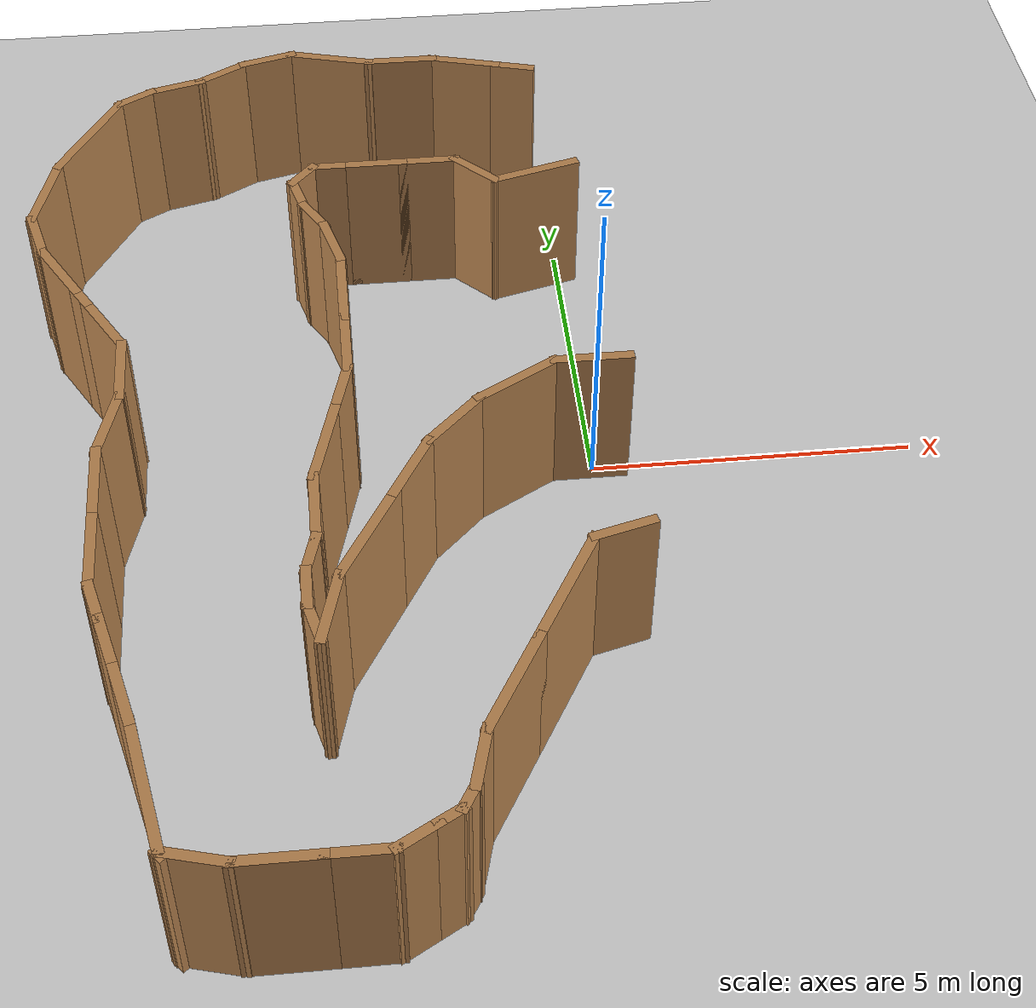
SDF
<sdf version="1.7">
 <world name="default">
  <model name="ground_plane">
   <static>1</static>
   <link name="link">
    <collision name="collision">
     <geometry><plane><normal>0 0 1</normal><size>100 100</size></plane></geometry>
     <surface><friction><ode><mu>100</mu><mu2>50</mu2></ode></friction></surface>
    </collision>
    <visual name="visual">
     <cast_shadows>0</cast_shadows>
     <geometry><plane><normal>0 0 1</normal><size>100 100</size></plane></geometry>
     <material>
      <script><uri>file://media/materials/scripts/gazebo.material</uri><name>Gazebo/Grey</name></script>
     </material>
    </visual>
   </link>
  </model>
  <model name="m-shape-circle">
   <pose>0.902463 -0.279625 0 0 -0 0</pose>
   <link name="Wall_10">
    <collision name="Wall_10_Collision">
     <geometry><box><size>0.75 0.15 2.5</size></box></geometry>
     <pose>0 0 1.25 0 -0 0</pose>
    </collision>
    <visual name="Wall_10_Visual">
     <pose>0 0 1.25 0 -0 0</pose>
     <geometry><box><size>0.75 0.15 2.5</size></box></geometry>
     <material>
      <script><uri>file://media/materials/scripts/gazebo.material</uri><name>Gazebo/Wood</name></script>
      <ambient>1 1 1 1</ambient>
     </material>
     <meta><layer>0</layer></meta>
    </visual>
    <pose>-8.04587 -3.77192 0 0 -0 1.8326</pose>
   </link>
   <link name="Wall_11">
    <collision name="Wall_11_Collision">
     <geometry><box><size>1.5 0.15 2.5</size></box></geometry>
     <pose>0 0 1.25 0 -0 0</pose>
    </collision>
    <visual name="Wall_11_Visual">
     <pose>0 0 1.25 0 -0 0</pose>
     <geometry><box><size>1.5 0.15 2.5</size></box></geometry>
     <material>
      <script><uri>file://media/materials/scripts/gazebo.material</uri><name>Gazebo/Wood</name></script>
      <ambient>1 1 1 1</ambient>
     </material>
     <meta><layer>0</layer></meta>
    </visual>
    <pose>-8.12351 -2.80714 0 0 -0 1.5708</pose>
   </link>
   <link name="Wall_117">
    <collision name="Wall_117_Collision">
     <geometry><box><size>1.25 0.15 2.5</size></box></geometry>
     <pose>0 0 1.25 0 -0 0</pose>
    </collision>
    <visual name="Wall_117_Visual">
     <pose>0 0 1.25 0 -0 0</pose>
     <geometry><box><size>1.25 0.15 2.5</size></box></geometry>
     <material>
      <script><uri>file://media/materials/scripts/gazebo.material</uri><name>Gazebo/Wood</name></script>
      <ambient>1 1 1 1</ambient>
     </material>
     <meta><layer>0</layer></meta>
    </visual>
    <pose>-0.996021 0.174352 0 0 -0 3.14159</pose>
   </link>
   <link name="Wall_118">
    <collision name="Wall_118_Collision">
     <geometry><box><size>1.5 0.15 2.5</size></box></geometry>
     <pose>0 0 1.25 0 -0 0</pose>
    </collision>
    <visual name="Wall_118_Visual">
     <pose>0 0 1.25 0 -0 0</pose>
     <geometry><box><size>1.5 0.15 2.5</size></box></geometry>
     <material>
      <script><uri>file://media/materials/scripts/gazebo.material</uri><name>Gazebo/Wood</name></script>
      <ambient>1 1 1 1</ambient>
     </material>
     <meta><layer>0</layer></meta>
    </visual>
    <pose>-2.13059 -0.163148 0 0 -0 -2.61799</pose>
   </link>
   <link name="Wall_119">
    <collision name="Wall_119_Collision">
     <geometry><box><size>1.25 0.15 2.5</size></box></geometry>
     <pose>0 0 1.25 0 -0 0</pose>
    </collision>
    <visual name="Wall_119_Visual">
     <pose>0 0 1.25 0 -0 0</pose>
     <geometry><box><size>1.25 0.15 2.5</size></box></geometry>
     <material>
      <script><uri>file://media/materials/scripts/gazebo.material</uri><name>Gazebo/Wood</name></script>
      <ambient>1 1 1 1</ambient>
     </material>
     <meta><layer>0</layer></meta>
    </visual>
    <pose>-3.10406 -0.889557 0 0 -0 -2.35619</pose>
   </link>
   <link name="Wall_12">
    <collision name="Wall_12_Collision">
     <geometry><box><size>1.25 0.15 2.5</size></box></geometry>
     <pose>0 0 1.25 0 -0 0</pose>
    </collision>
    <visual name="Wall_12_Visual">
     <pose>0 0 1.25 0 -0 0</pose>
     <geometry><box><size>1.25 0.15 2.5</size></box></geometry>
     <material>
      <script><uri>file://media/materials/scripts/gazebo.material</uri><name>Gazebo/Wood</name></script>
      <ambient>1 1 1 1</ambient>
     </material>
     <meta><layer>0</layer></meta>
    </visual>
    <pose>-8.12351 -1.58214 0 0 -0 1.5708</pose>
   </link>
   <link name="Wall_120">
    <collision name="Wall_120_Collision">
     <geometry><box><size>1.25 0.15 2.5</size></box></geometry>
     <pose>0 0 1.25 0 -0 0</pose>
    </collision>
    <visual name="Wall_120_Visual">
     <pose>0 0 1.25 0 -0 0</pose>
     <geometry><box><size>1.25 0.15 2.5</size></box></geometry>
     <material>
      <script><uri>file://media/materials/scripts/gazebo.material</uri><name>Gazebo/Wood</name></script>
      <ambient>1 1 1 1</ambient>
     </material>
     <meta><layer>0</layer></meta>
    </visual>
    <pose>-3.76797 -1.75478 0 0 -0 -2.0944</pose>
   </link>
   <link name="Wall_121">
    <collision name="Wall_121_Collision">
     <geometry><box><size>1.75 0.15 2.5</size></box></geometry>
     <pose>0 0 1.25 0 -0 0</pose>
    </collision>
    <visual name="Wall_121_Visual">
     <pose>0 0 1.25 0 -0 0</pose>
     <geometry><box><size>1.75 0.15 2.5</size></box></geometry>
     <material>
      <script><uri>file://media/materials/scripts/gazebo.material</uri><name>Gazebo/Wood</name></script>
      <ambient>1 1 1 1</ambient>
     </material>
     <meta><layer>0</layer></meta>
    </visual>
    <pose>-4.44297 -2.92391 0 0 -0 -2.0944</pose>
   </link>
   <link name="Wall_122">
    <collision name="Wall_122_Collision">
     <geometry><box><size>1.25 0.15 2.5</size></box></geometry>
     <pose>0 0 1.25 0 -0 0</pose>
    </collision>
    <visual name="Wall_122_Visual">
     <pose>0 0 1.25 0 -0 0</pose>
     <geometry><box><size>1.25 0.15 2.5</size></box></geometry>
     <material>
      <script><uri>file://media/materials/scripts/gazebo.material</uri><name>Gazebo/Wood</name></script>
      <ambient>1 1 1 1</ambient>
     </material>
     <meta><layer>0</layer></meta>
    </visual>
    <pose>-4.98532 -4.14799 0 0 -0 -1.8326</pose>
   </link>
   <link name="Wall_123">
    <collision name="Wall_123_Collision">
     <geometry><box><size>0.75 0.15 2.5</size></box></geometry>
     <pose>0 0 1.25 0 -0 0</pose>
    </collision>
    <visual name="Wall_123_Visual">
     <pose>0 0 1.25 0 -0 0</pose>
     <geometry><box><size>0.75 0.15 2.5</size></box></geometry>
     <material>
      <script><uri>file://media/materials/scripts/gazebo.material</uri><name>Gazebo/Wood</name></script>
      <ambient>1 1 1 1</ambient>
     </material>
     <meta><layer>0</layer></meta>
    </visual>
    <pose>-5.20532 -4.38948 0 0 -0 1.8326</pose>
   </link>
   <link name="Wall_124">
    <collision name="Wall_124_Collision">
     <geometry><box><size>0.75 0.15 2.5</size></box></geometry>
     <pose>0 0 1.25 0 -0 0</pose>
    </collision>
    <visual name="Wall_124_Visual">
     <pose>0 0 1.25 0 -0 0</pose>
     <geometry><box><size>0.75 0.15 2.5</size></box></geometry>
     <material>
      <script><uri>file://media/materials/scripts/gazebo.material</uri><name>Gazebo/Wood</name></script>
      <ambient>1 1 1 1</ambient>
     </material>
     <meta><layer>0</layer></meta>
    </visual>
    <pose>-5.28296 -3.7997 0 0 -0 1.5708</pose>
   </link>
   <link name="Wall_125">
    <collision name="Wall_125_Collision">
     <geometry><box><size>0.75 0.15 2.5</size></box></geometry>
     <pose>0 0 1.25 0 -0 0</pose>
    </collision>
    <visual name="Wall_125_Visual">
     <pose>0 0 1.25 0 -0 0</pose>
     <geometry><box><size>0.75 0.15 2.5</size></box></geometry>
     <material>
      <script><uri>file://media/materials/scripts/gazebo.material</uri><name>Gazebo/Wood</name></script>
      <ambient>1 1 1 1</ambient>
     </material>
     <meta><layer>0</layer></meta>
    </visual>
    <pose>-5.20532 -3.20992 0 0 -0 1.309</pose>
   </link>
   <link name="Wall_126">
    <collision name="Wall_126_Collision">
     <geometry><box><size>1.25 0.15 2.5</size></box></geometry>
     <pose>0 0 1.25 0 -0 0</pose>
    </collision>
    <visual name="Wall_126_Visual">
     <pose>0 0 1.25 0 -0 0</pose>
     <geometry><box><size>1.25 0.15 2.5</size></box></geometry>
     <material>
      <script><uri>file://media/materials/scripts/gazebo.material</uri><name>Gazebo/Wood</name></script>
      <ambient>1 1 1 1</ambient>
     </material>
     <meta><layer>0</layer></meta>
    </visual>
    <pose>-5.12767 -2.37014 0 0 -0 1.5708</pose>
   </link>
   <link name="Wall_127">
    <collision name="Wall_127_Collision">
     <geometry><box><size>1.5 0.15 2.5</size></box></geometry>
     <pose>0 0 1.25 0 -0 0</pose>
    </collision>
    <visual name="Wall_127_Visual">
     <pose>0 0 1.25 0 -0 0</pose>
     <geometry><box><size>1.5 0.15 2.5</size></box></geometry>
     <material>
      <script><uri>file://media/materials/scripts/gazebo.material</uri><name>Gazebo/Wood</name></script>
      <ambient>1 1 1 1</ambient>
     </material>
     <meta><layer>0</layer></meta>
    </visual>
    <pose>-4.95297 -1.16814 0 0 -0 1.309</pose>
   </link>
   <link name="Wall_128">
    <collision name="Wall_128_Collision">
     <geometry><box><size>1 0.15 2.5</size></box></geometry>
     <pose>0 0 1.25 0 -0 0</pose>
    </collision>
    <visual name="Wall_128_Visual">
     <pose>0 0 1.25 0 -0 0</pose>
     <geometry><box><size>1 0.15 2.5</size></box></geometry>
     <material>
      <script><uri>file://media/materials/scripts/gazebo.material</uri><name>Gazebo/Wood</name></script>
      <ambient>1 1 1 1</ambient>
     </material>
     <meta><layer>0</layer></meta>
    </visual>
    <pose>-4.66827 -0.105623 0 0 -0 1.309</pose>
   </link>
   <link name="Wall_129">
    <collision name="Wall_129_Collision">
     <geometry><box><size>1.25 0.15 2.5</size></box></geometry>
     <pose>0 0 1.25 0 -0 0</pose>
    </collision>
    <visual name="Wall_129_Visual">
     <pose>0 0 1.25 0 -0 0</pose>
     <geometry><box><size>1.25 0.15 2.5</size></box></geometry>
     <material>
      <script><uri>file://media/materials/scripts/gazebo.material</uri><name>Gazebo/Wood</name></script>
      <ambient>1 1 1 1</ambient>
     </material>
     <meta><layer>0</layer></meta>
    </visual>
    <pose>-4.55827 0.854895 0 0 -0 1.5708</pose>
   </link>
   <link name="Wall_13">
    <collision name="Wall_13_Collision">
     <geometry><box><size>1.25 0.15 2.5</size></box></geometry>
     <pose>0 0 1.25 0 -0 0</pose>
    </collision>
    <visual name="Wall_13_Visual">
     <pose>0 0 1.25 0 -0 0</pose>
     <geometry><box><size>1.25 0.15 2.5</size></box></geometry>
     <material>
      <script><uri>file://media/materials/scripts/gazebo.material</uri><name>Gazebo/Wood</name></script>
      <ambient>1 1 1 1</ambient>
     </material>
     <meta><layer>0</layer></meta>
    </visual>
    <pose>-7.98116 -0.500884 0 0 -0 1.309</pose>
   </link>
   <link name="Wall_130">
    <collision name="Wall_130_Collision">
     <geometry><box><size>1.5 0.15 2.5</size></box></geometry>
     <pose>0 0 1.25 0 -0 0</pose>
    </collision>
    <visual name="Wall_130_Visual">
     <pose>0 0 1.25 0 -0 0</pose>
     <geometry><box><size>1.5 0.15 2.5</size></box></geometry>
     <material>
      <script><uri>file://media/materials/scripts/gazebo.material</uri><name>Gazebo/Wood</name></script>
      <ambient>1 1 1 1</ambient>
     </material>
     <meta><layer>0</layer></meta>
    </visual>
    <pose>-4.55827 2.0799 0 0 -0 1.5708</pose>
   </link>
   <link name="Wall_131">
    <collision name="Wall_131_Collision">
     <geometry><box><size>1 0.15 2.5</size></box></geometry>
     <pose>0 0 1.25 0 -0 0</pose>
    </collision>
    <visual name="Wall_131_Visual">
     <pose>0 0 1.25 0 -0 0</pose>
     <geometry><box><size>1 0.15 2.5</size></box></geometry>
     <material>
      <script><uri>file://media/materials/scripts/gazebo.material</uri><name>Gazebo/Wood</name></script>
      <ambient>1 1 1 1</ambient>
     </material>
     <meta><layer>0</layer></meta>
    </visual>
    <pose>-4.66827 3.16541 0 0 -0 1.8326</pose>
   </link>
   <link name="Wall_132">
    <collision name="Wall_132_Collision">
     <geometry><box><size>0.75 0.15 2.5</size></box></geometry>
     <pose>0 0 1.25 0 -0 0</pose>
    </collision>
    <visual name="Wall_132_Visual">
     <pose>0 0 1.25 0 -0 0</pose>
     <geometry><box><size>0.75 0.15 2.5</size></box></geometry>
     <material>
      <script><uri>file://media/materials/scripts/gazebo.material</uri><name>Gazebo/Wood</name></script>
      <ambient>1 1 1 1</ambient>
     </material>
     <meta><layer>0</layer></meta>
    </visual>
    <pose>-4.92827 3.83574 0 0 -0 2.0944</pose>
   </link>
   <link name="Wall_133">
    <collision name="Wall_133_Collision">
     <geometry><box><size>0.75 0.15 2.5</size></box></geometry>
     <pose>0 0 1.25 0 -0 0</pose>
    </collision>
    <visual name="Wall_133_Visual">
     <pose>0 0 1.25 0 -0 0</pose>
     <geometry><box><size>0.75 0.15 2.5</size></box></geometry>
     <material>
      <script><uri>file://media/materials/scripts/gazebo.material</uri><name>Gazebo/Wood</name></script>
      <ambient>1 1 1 1</ambient>
     </material>
     <meta><layer>0</layer></meta>
    </visual>
    <pose>-5.15591 4.38532 0 0 -0 1.8326</pose>
   </link>
   <link name="Wall_134">
    <collision name="Wall_134_Collision">
     <geometry><box><size>0.652836 0.15 2.5</size></box></geometry>
     <pose>0 0 1.25 0 -0 0</pose>
    </collision>
    <visual name="Wall_134_Visual">
     <pose>0 0 1.25 0 -0 0</pose>
     <geometry><box><size>0.652836 0.15 2.5</size></box></geometry>
     <material>
      <script><uri>file://media/materials/scripts/gazebo.material</uri><name>Gazebo/Wood</name></script>
      <ambient>1 1 1 1</ambient>
     </material>
     <meta><layer>0</layer></meta>
    </visual>
    <pose>-5.0662 4.86273 0 0 -0 0.842435</pose>
   </link>
   <link name="Wall_14">
    <collision name="Wall_14_Collision">
     <geometry><box><size>1.25 0.15 2.5</size></box></geometry>
     <pose>0 0 1.25 0 -0 0</pose>
    </collision>
    <visual name="Wall_14_Visual">
     <pose>0 0 1.25 0 -0 0</pose>
     <geometry><box><size>1.25 0.15 2.5</size></box></geometry>
     <material>
      <script><uri>file://media/materials/scripts/gazebo.material</uri><name>Gazebo/Wood</name></script>
      <ambient>1 1 1 1</ambient>
     </material>
     <meta><layer>0</layer></meta>
    </visual>
    <pose>-7.83881 0.580375 0 0 -0 1.5708</pose>
   </link>
   <link name="Wall_15">
    <collision name="Wall_15_Collision">
     <geometry><box><size>1.25 0.15 2.5</size></box></geometry>
     <pose>0 0 1.25 0 -0 0</pose>
    </collision>
    <visual name="Wall_15_Visual">
     <pose>0 0 1.25 0 -0 0</pose>
     <geometry><box><size>1.25 0.15 2.5</size></box></geometry>
     <material>
      <script><uri>file://media/materials/scripts/gazebo.material</uri><name>Gazebo/Wood</name></script>
      <ambient>1 1 1 1</ambient>
     </material>
     <meta><layer>0</layer></meta>
    </visual>
    <pose>-8.11381 1.60669 0 0 -0 2.0944</pose>
   </link>
   <link name="Wall_16">
    <collision name="Wall_16_Collision">
     <geometry><box><size>0.5 0.15 2.5</size></box></geometry>
     <pose>0 0 1.25 0 -0 0</pose>
    </collision>
    <visual name="Wall_16_Visual">
     <pose>0 0 1.25 0 -0 0</pose>
     <geometry><box><size>0.5 0.15 2.5</size></box></geometry>
     <material>
      <script><uri>file://media/materials/scripts/gazebo.material</uri><name>Gazebo/Wood</name></script>
      <ambient>1 1 1 1</ambient>
     </material>
     <meta><layer>0</layer></meta>
    </visual>
    <pose>-8.47631 2.23456 0 0 -0 2.0944</pose>
   </link>
   <link name="Wall_17">
    <collision name="Wall_17_Collision">
     <geometry><box><size>1.25 0.15 2.5</size></box></geometry>
     <pose>0 0 1.25 0 -0 0</pose>
    </collision>
    <visual name="Wall_17_Visual">
     <pose>0 0 1.25 0 -0 0</pose>
     <geometry><box><size>1.25 0.15 2.5</size></box></geometry>
     <material>
      <script><uri>file://media/materials/scripts/gazebo.material</uri><name>Gazebo/Wood</name></script>
      <ambient>1 1 1 1</ambient>
     </material>
     <meta><layer>0</layer></meta>
    </visual>
    <pose>-8.83881 2.86243 0 0 -0 2.0944</pose>
   </link>
   <link name="Wall_18">
    <collision name="Wall_18_Collision">
     <geometry><box><size>1 0.15 2.5</size></box></geometry>
     <pose>0 0 1.25 0 -0 0</pose>
    </collision>
    <visual name="Wall_18_Visual">
     <pose>0 0 1.25 0 -0 0</pose>
     <geometry><box><size>1 0.15 2.5</size></box></geometry>
     <material>
      <script><uri>file://media/materials/scripts/gazebo.material</uri><name>Gazebo/Wood</name></script>
      <ambient>1 1 1 1</ambient>
     </material>
     <meta><layer>0</layer></meta>
    </visual>
    <pose>-9.22381 3.74926 0 0 -0 1.8326</pose>
   </link>
   <link name="Wall_19">
    <collision name="Wall_19_Collision">
     <geometry><box><size>1.5 0.15 2.5</size></box></geometry>
     <pose>0 0 1.25 0 -0 0</pose>
    </collision>
    <visual name="Wall_19_Visual">
     <pose>0 0 1.25 0 -0 0</pose>
     <geometry><box><size>1.5 0.15 2.5</size></box></geometry>
     <material>
      <script><uri>file://media/materials/scripts/gazebo.material</uri><name>Gazebo/Wood</name></script>
      <ambient>1 1 1 1</ambient>
     </material>
     <meta><layer>0</layer></meta>
    </visual>
    <pose>-9.15911 4.81178 0 0 -0 1.309</pose>
   </link>
   <link name="Wall_20">
    <collision name="Wall_20_Collision">
     <geometry><box><size>2 0.15 2.5</size></box></geometry>
     <pose>0 0 1.25 0 -0 0</pose>
    </collision>
    <visual name="Wall_20_Visual">
     <pose>0 0 1.25 0 -0 0</pose>
     <geometry><box><size>2 0.15 2.5</size></box></geometry>
     <material>
      <script><uri>file://media/materials/scripts/gazebo.material</uri><name>Gazebo/Wood</name></script>
      <ambient>1 1 1 1</ambient>
     </material>
     <meta><layer>0</layer></meta>
    </visual>
    <pose>-8.5219 6.26485 0 0 -0 1.0472</pose>
   </link>
   <link name="Wall_21">
    <collision name="Wall_21_Collision">
     <geometry><box><size>0.75 0.15 2.5</size></box></geometry>
     <pose>0 0 1.25 0 -0 0</pose>
    </collision>
    <visual name="Wall_21_Visual">
     <pose>0 0 1.25 0 -0 0</pose>
     <geometry><box><size>0.75 0.15 2.5</size></box></geometry>
     <material>
      <script><uri>file://media/materials/scripts/gazebo.material</uri><name>Gazebo/Wood</name></script>
      <ambient>1 1 1 1</ambient>
     </material>
     <meta><layer>0</layer></meta>
    </visual>
    <pose>-7.7996 7.21592 0 0 -0 0.523599</pose>
   </link>
   <link name="Wall_22">
    <collision name="Wall_22_Collision">
     <geometry><box><size>1 0.15 2.5</size></box></geometry>
     <pose>0 0 1.25 0 -0 0</pose>
    </collision>
    <visual name="Wall_22_Visual">
     <pose>0 0 1.25 0 -0 0</pose>
     <geometry><box><size>1 0.15 2.5</size></box></geometry>
     <material>
      <script><uri>file://media/materials/scripts/gazebo.material</uri><name>Gazebo/Wood</name></script>
      <ambient>1 1 1 1</ambient>
     </material>
     <meta><layer>0</layer></meta>
    </visual>
    <pose>-7.12927 7.47592 0 0 -0 0.261799</pose>
   </link>
   <link name="Wall_23">
    <collision name="Wall_23_Collision">
     <geometry><box><size>1 0.15 2.5</size></box></geometry>
     <pose>0 0 1.25 0 -0 0</pose>
    </collision>
    <visual name="Wall_23_Visual">
     <pose>0 0 1.25 0 -0 0</pose>
     <geometry><box><size>1 0.15 2.5</size></box></geometry>
     <material>
      <script><uri>file://media/materials/scripts/gazebo.material</uri><name>Gazebo/Wood</name></script>
      <ambient>1 1 1 1</ambient>
     </material>
     <meta><layer>0</layer></meta>
    </visual>
    <pose>-6.35069 7.79842 0 0 -0 0.523599</pose>
   </link>
   <link name="Wall_24">
    <collision name="Wall_24_Collision">
     <geometry><box><size>1 0.15 2.5</size></box></geometry>
     <pose>0 0 1.25 0 -0 0</pose>
    </collision>
    <visual name="Wall_24_Visual">
     <pose>0 0 1.25 0 -0 0</pose>
     <geometry><box><size>1 0.15 2.5</size></box></geometry>
     <material>
      <script><uri>file://media/materials/scripts/gazebo.material</uri><name>Gazebo/Wood</name></script>
      <ambient>1 1 1 1</ambient>
     </material>
     <meta><layer>0</layer></meta>
    </visual>
    <pose>-5.57211 8.12092 0 0 -0 0.261799</pose>
   </link>
   <link name="Wall_25">
    <collision name="Wall_25_Collision">
     <geometry><box><size>1.5 0.15 2.5</size></box></geometry>
     <pose>0 0 1.25 0 -0 0</pose>
    </collision>
    <visual name="Wall_25_Visual">
     <pose>0 0 1.25 0 -0 0</pose>
     <geometry><box><size>1.5 0.15 2.5</size></box></geometry>
     <material>
      <script><uri>file://media/materials/scripts/gazebo.material</uri><name>Gazebo/Wood</name></script>
      <ambient>1 1 1 1</ambient>
     </material>
     <meta><layer>0</layer></meta>
    </visual>
    <pose>-4.50959 8.05621 0 0 -0 -0.261799</pose>
   </link>
   <link name="Wall_26">
    <collision name="Wall_26_Collision">
     <geometry><box><size>1.25 0.15 2.5</size></box></geometry>
     <pose>0 0 1.25 0 -0 0</pose>
    </collision>
    <visual name="Wall_26_Visual">
     <pose>0 0 1.25 0 -0 0</pose>
     <geometry><box><size>1.25 0.15 2.5</size></box></geometry>
     <material>
      <script><uri>file://media/materials/scripts/gazebo.material</uri><name>Gazebo/Wood</name></script>
      <ambient>1 1 1 1</ambient>
     </material>
     <meta><layer>0</layer></meta>
    </visual>
    <pose>-3.30759 7.88151 0 0 -0 0</pose>
   </link>
   <link name="Wall_27">
    <collision name="Wall_27_Collision">
     <geometry><box><size>1.25 0.15 2.5</size></box></geometry>
     <pose>0 0 1.25 0 -0 0</pose>
    </collision>
    <visual name="Wall_27_Visual">
     <pose>0 0 1.25 0 -0 0</pose>
     <geometry><box><size>1.25 0.15 2.5</size></box></geometry>
     <material>
      <script><uri>file://media/materials/scripts/gazebo.material</uri><name>Gazebo/Wood</name></script>
      <ambient>1 1 1 1</ambient>
     </material>
     <meta><layer>0</layer></meta>
    </visual>
    <pose>-2.22634 7.73916 0 0 -0 -0.261799</pose>
   </link>
   <link name="Wall_28">
    <collision name="Wall_28_Collision">
     <geometry><box><size>0.75 0.15 2.5</size></box></geometry>
     <pose>0 0 1.25 0 -0 0</pose>
    </collision>
    <visual name="Wall_28_Visual">
     <pose>0 0 1.25 0 -0 0</pose>
     <geometry><box><size>0.75 0.15 2.5</size></box></geometry>
     <material>
      <script><uri>file://media/materials/scripts/gazebo.material</uri><name>Gazebo/Wood</name></script>
      <ambient>1 1 1 1</ambient>
     </material>
     <meta><layer>0</layer></meta>
    </visual>
    <pose>-1.4053 7.51916 0 0 -0 -0.261799</pose>
   </link>
   <link name="Wall_6">
    <collision name="Wall_6_Collision">
     <geometry><box><size>0.22822 0.15 2.5</size></box></geometry>
     <pose>0 0 1.25 0 -0 0</pose>
    </collision>
    <visual name="Wall_6_Visual">
     <pose>0 0 1.25 0 -0 0</pose>
     <geometry><box><size>0.22822 0.15 2.5</size></box></geometry>
     <material>
      <script><uri>file://media/materials/scripts/gazebo.material</uri><name>Gazebo/Wood</name></script>
      <ambient>1 1 1 1</ambient>
     </material>
     <meta><layer>0</layer></meta>
    </visual>
    <pose>-7.11971 -7.68152 0 0 -0 2.26429</pose>
   </link>
   <link name="Wall_7">
    <collision name="Wall_7_Collision">
     <geometry><box><size>2.12472 0.15 2.5</size></box></geometry>
     <pose>0 0 1.25 0 -0 0</pose>
    </collision>
    <visual name="Wall_7_Visual">
     <pose>0 0 1.25 0 -0 0</pose>
     <geometry><box><size>2.12472 0.15 2.5</size></box></geometry>
     <material>
      <script><uri>file://media/materials/scripts/gazebo.material</uri><name>Gazebo/Wood</name></script>
      <ambient>1 1 1 1</ambient>
     </material>
     <meta><layer>0</layer></meta>
    </visual>
    <pose>-7.32986 -6.68422 0 0 -0 1.77309</pose>
   </link>
   <link name="Wall_77">
    <collision name="Wall_77_Collision">
     <geometry><box><size>1 0.15 2.5</size></box></geometry>
     <pose>0 0 1.25 0 -0 0</pose>
    </collision>
    <visual name="Wall_77_Visual">
     <pose>0 0 1.25 0 -0 0</pose>
     <geometry><box><size>1 0.15 2.5</size></box></geometry>
     <material>
      <script><uri>file://media/materials/scripts/gazebo.material</uri><name>Gazebo/Wood</name></script>
      <ambient>1 1 1 1</ambient>
     </material>
     <meta><layer>0</layer></meta>
    </visual>
    <pose>-6.72096 -7.76145 0 0 -0 -0.261799</pose>
   </link>
   <link name="Wall_78">
    <collision name="Wall_78_Collision">
     <geometry><box><size>1.25 0.15 2.5</size></box></geometry>
     <pose>0 0 1.25 0 -0 0</pose>
    </collision>
    <visual name="Wall_78_Visual">
     <pose>0 0 1.25 0 -0 0</pose>
     <geometry><box><size>1.25 0.15 2.5</size></box></geometry>
     <material>
      <script><uri>file://media/materials/scripts/gazebo.material</uri><name>Gazebo/Wood</name></script>
      <ambient>1 1 1 1</ambient>
     </material>
     <meta><layer>0</layer></meta>
    </visual>
    <pose>-5.76044 -7.87144 0 0 -0 0</pose>
   </link>
   <link name="Wall_79">
    <collision name="Wall_79_Collision">
     <geometry><box><size>1 0.15 2.5</size></box></geometry>
     <pose>0 0 1.25 0 -0 0</pose>
    </collision>
    <visual name="Wall_79_Visual">
     <pose>0 0 1.25 0 -0 0</pose>
     <geometry><box><size>1 0.15 2.5</size></box></geometry>
     <material>
      <script><uri>file://media/materials/scripts/gazebo.material</uri><name>Gazebo/Wood</name></script>
      <ambient>1 1 1 1</ambient>
     </material>
     <meta><layer>0</layer></meta>
    </visual>
    <pose>-4.78544 -7.87144 0 0 -0 0</pose>
   </link>
   <link name="Wall_8">
    <collision name="Wall_8_Collision">
     <geometry><box><size>1.02558 0.15 2.5</size></box></geometry>
     <pose>0 0 1.25 0 -0 0</pose>
    </collision>
    <visual name="Wall_8_Visual">
     <pose>0 0 1.25 0 -0 0</pose>
     <geometry><box><size>1.02558 0.15 2.5</size></box></geometry>
     <material>
      <script><uri>file://media/materials/scripts/gazebo.material</uri><name>Gazebo/Wood</name></script>
      <ambient>1 1 1 1</ambient>
     </material>
     <meta><layer>0</layer></meta>
    </visual>
    <pose>-7.63823 -5.30648 0 0 -0 1.82478</pose>
   </link>
   <link name="Wall_80">
    <collision name="Wall_80_Collision">
     <geometry><box><size>0.75 0.15 2.5</size></box></geometry>
     <pose>0 0 1.25 0 -0 0</pose>
    </collision>
    <visual name="Wall_80_Visual">
     <pose>0 0 1.25 0 -0 0</pose>
     <geometry><box><size>0.75 0.15 2.5</size></box></geometry>
     <material>
      <script><uri>file://media/materials/scripts/gazebo.material</uri><name>Gazebo/Wood</name></script>
      <ambient>1 1 1 1</ambient>
     </material>
     <meta><layer>0</layer></meta>
    </visual>
    <pose>-4.10064 -7.72144 0 0 -0 0.523599</pose>
   </link>
   <link name="Wall_81">
    <collision name="Wall_81_Collision">
     <geometry><box><size>0.5 0.15 2.5</size></box></geometry>
     <pose>0 0 1.25 0 -0 0</pose>
    </collision>
    <visual name="Wall_81_Visual">
     <pose>0 0 1.25 0 -0 0</pose>
     <geometry><box><size>0.5 0.15 2.5</size></box></geometry>
     <material>
      <script><uri>file://media/materials/scripts/gazebo.material</uri><name>Gazebo/Wood</name></script>
      <ambient>1 1 1 1</ambient>
     </material>
     <meta><layer>0</layer></meta>
    </visual>
    <pose>-3.68927 -7.48394 0 0 -0 0.523599</pose>
   </link>
   <link name="Wall_82">
    <collision name="Wall_82_Collision">
     <geometry><box><size>0.5 0.15 2.5</size></box></geometry>
     <pose>0 0 1.25 0 -0 0</pose>
    </collision>
    <visual name="Wall_82_Visual">
     <pose>0 0 1.25 0 -0 0</pose>
     <geometry><box><size>0.5 0.15 2.5</size></box></geometry>
     <material>
      <script><uri>file://media/materials/scripts/gazebo.material</uri><name>Gazebo/Wood</name></script>
      <ambient>1 1 1 1</ambient>
     </material>
     <meta><layer>0</layer></meta>
    </visual>
    <pose>-3.45022 -7.24489 0 0 -0 1.0472</pose>
   </link>
   <link name="Wall_83">
    <collision name="Wall_83_Collision">
     <geometry><box><size>1 0.15 2.5</size></box></geometry>
     <pose>0 0 1.25 0 -0 0</pose>
    </collision>
    <visual name="Wall_83_Visual">
     <pose>0 0 1.25 0 -0 0</pose>
     <geometry><box><size>1 0.15 2.5</size></box></geometry>
     <material>
      <script><uri>file://media/materials/scripts/gazebo.material</uri><name>Gazebo/Wood</name></script>
      <ambient>1 1 1 1</ambient>
     </material>
     <meta><layer>0</layer></meta>
    </visual>
    <pose>-3.25272 -6.68282 0 0 -0 1.309</pose>
   </link>
   <link name="Wall_84">
    <collision name="Wall_84_Collision">
     <geometry><box><size>1.75 0.15 2.5</size></box></geometry>
     <pose>0 0 1.25 0 -0 0</pose>
    </collision>
    <visual name="Wall_84_Visual">
     <pose>0 0 1.25 0 -0 0</pose>
     <geometry><box><size>1.75 0.15 2.5</size></box></geometry>
     <material>
      <script><uri>file://media/materials/scripts/gazebo.material</uri><name>Gazebo/Wood</name></script>
      <ambient>1 1 1 1</ambient>
     </material>
     <meta><layer>0</layer></meta>
    </visual>
    <pose>-2.74272 -5.57948 0 0 -0 1.0472</pose>
   </link>
   <link name="Wall_85">
    <collision name="Wall_85_Collision">
     <geometry><box><size>2 0.15 2.5</size></box></geometry>
     <pose>0 0 1.25 0 -0 0</pose>
    </collision>
    <visual name="Wall_85_Visual">
     <pose>0 0 1.25 0 -0 0</pose>
     <geometry><box><size>2 0.15 2.5</size></box></geometry>
     <material>
      <script><uri>file://media/materials/scripts/gazebo.material</uri><name>Gazebo/Wood</name></script>
      <ambient>1 1 1 1</ambient>
     </material>
     <meta><layer>0</layer></meta>
    </visual>
    <pose>-1.88022 -4.08558 0 0 -0 1.0472</pose>
   </link>
   <link name="Wall_86">
    <collision name="Wall_86_Collision">
     <geometry><box><size>1 0.15 2.5</size></box></geometry>
     <pose>0 0 1.25 0 -0 0</pose>
    </collision>
    <visual name="Wall_86_Visual">
     <pose>0 0 1.25 0 -0 0</pose>
     <geometry><box><size>1 0.15 2.5</size></box></geometry>
     <material>
      <script><uri>file://media/materials/scripts/gazebo.material</uri><name>Gazebo/Wood</name></script>
      <ambient>1 1 1 1</ambient>
     </material>
     <meta><layer>0</layer></meta>
    </visual>
    <pose>-1.0072 -3.17451 0 0 -0 0.261799</pose>
   </link>
   <link name="Wall_9">
    <collision name="Wall_9_Collision">
     <geometry><box><size>1 0.15 2.5</size></box></geometry>
     <pose>0 0 1.25 0 -0 0</pose>
    </collision>
    <visual name="Wall_9_Visual">
     <pose>0 0 1.25 0 -0 0</pose>
     <geometry><box><size>1 0.15 2.5</size></box></geometry>
     <material>
      <script><uri>file://media/materials/scripts/gazebo.material</uri><name>Gazebo/Wood</name></script>
      <ambient>1 1 1 1</ambient>
     </material>
     <meta><layer>0</layer></meta>
    </visual>
    <pose>-7.85823 -4.47222 0 0 -0 1.8326</pose>
   </link>
   <link name="Wall_94">
    <collision name="Wall_94_Collision">
     <geometry><box><size>0.75 0.15 2.5</size></box></geometry>
     <pose>0 0 1.25 0 -0 0</pose>
    </collision>
    <visual name="Wall_94_Visual">
     <pose>0 0 1.25 0 -0 0</pose>
     <geometry><box><size>0.75 0.15 2.5</size></box></geometry>
     <material>
      <script><uri>file://media/materials/scripts/gazebo.material</uri><name>Gazebo/Wood</name></script>
      <ambient>1 1 1 1</ambient>
     </material>
     <meta><layer>0</layer></meta>
    </visual>
    <pose>-4.59885 5.05035 0 0 -0 0</pose>
   </link>
   <link name="Wall_95">
    <collision name="Wall_95_Collision">
     <geometry><box><size>1 0.15 2.5</size></box></geometry>
     <pose>0 0 1.25 0 -0 0</pose>
    </collision>
    <visual name="Wall_95_Visual">
     <pose>0 0 1.25 0 -0 0</pose>
     <geometry><box><size>1 0.15 2.5</size></box></geometry>
     <material>
      <script><uri>file://media/materials/scripts/gazebo.material</uri><name>Gazebo/Wood</name></script>
      <ambient>1 1 1 1</ambient>
     </material>
     <meta><layer>0</layer></meta>
    </visual>
    <pose>-3.87385 5.05035 0 0 -0 0</pose>
   </link>
   <link name="Wall_96">
    <collision name="Wall_96_Collision">
     <geometry><box><size>1 0.15 2.5</size></box></geometry>
     <pose>0 0 1.25 0 -0 0</pose>
    </collision>
    <visual name="Wall_96_Visual">
     <pose>0 0 1.25 0 -0 0</pose>
     <geometry><box><size>1 0.15 2.5</size></box></geometry>
     <material>
      <script><uri>file://media/materials/scripts/gazebo.material</uri><name>Gazebo/Wood</name></script>
      <ambient>1 1 1 1</ambient>
     </material>
     <meta><layer>0</layer></meta>
    </visual>
    <pose>-3.02385 5.05035 0 0 -0 0</pose>
   </link>
   <link name="Wall_97">
    <collision name="Wall_97_Collision">
     <geometry><box><size>1 0.15 2.5</size></box></geometry>
     <pose>0 0 1.25 0 -0 0</pose>
    </collision>
    <visual name="Wall_97_Visual">
     <pose>0 0 1.25 0 -0 0</pose>
     <geometry><box><size>1 0.15 2.5</size></box></geometry>
     <material>
      <script><uri>file://media/materials/scripts/gazebo.material</uri><name>Gazebo/Wood</name></script>
      <ambient>1 1 1 1</ambient>
     </material>
     <meta><layer>0</layer></meta>
    </visual>
    <pose>-2.29833 4.74983 0 0 -0 -0.785398</pose>
   </link>
   <link name="Wall_98">
    <collision name="Wall_98_Collision">
     <geometry><box><size>1.5 0.15 2.5</size></box></geometry>
     <pose>0 0 1.25 0 -0 0</pose>
    </collision>
    <visual name="Wall_98_Visual">
     <pose>0 0 1.25 0 -0 0</pose>
     <geometry><box><size>1.5 0.15 2.5</size></box></geometry>
     <material>
      <script><uri>file://media/materials/scripts/gazebo.material</uri><name>Gazebo/Wood</name></script>
      <ambient>1 1 1 1</ambient>
     </material>
     <meta><layer>0</layer></meta>
    </visual>
    <pose>-1.34581 4.62401 0 0 -0 0.261799</pose>
   </link>
   <static>1</static>
  </model>
 </world>
</sdf>
